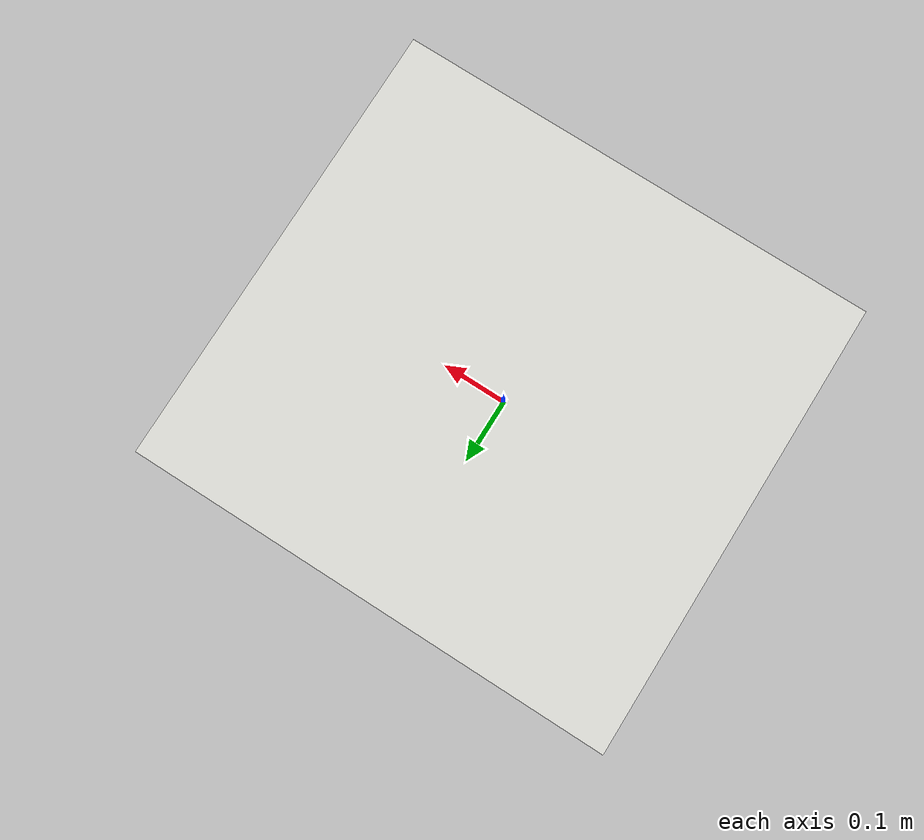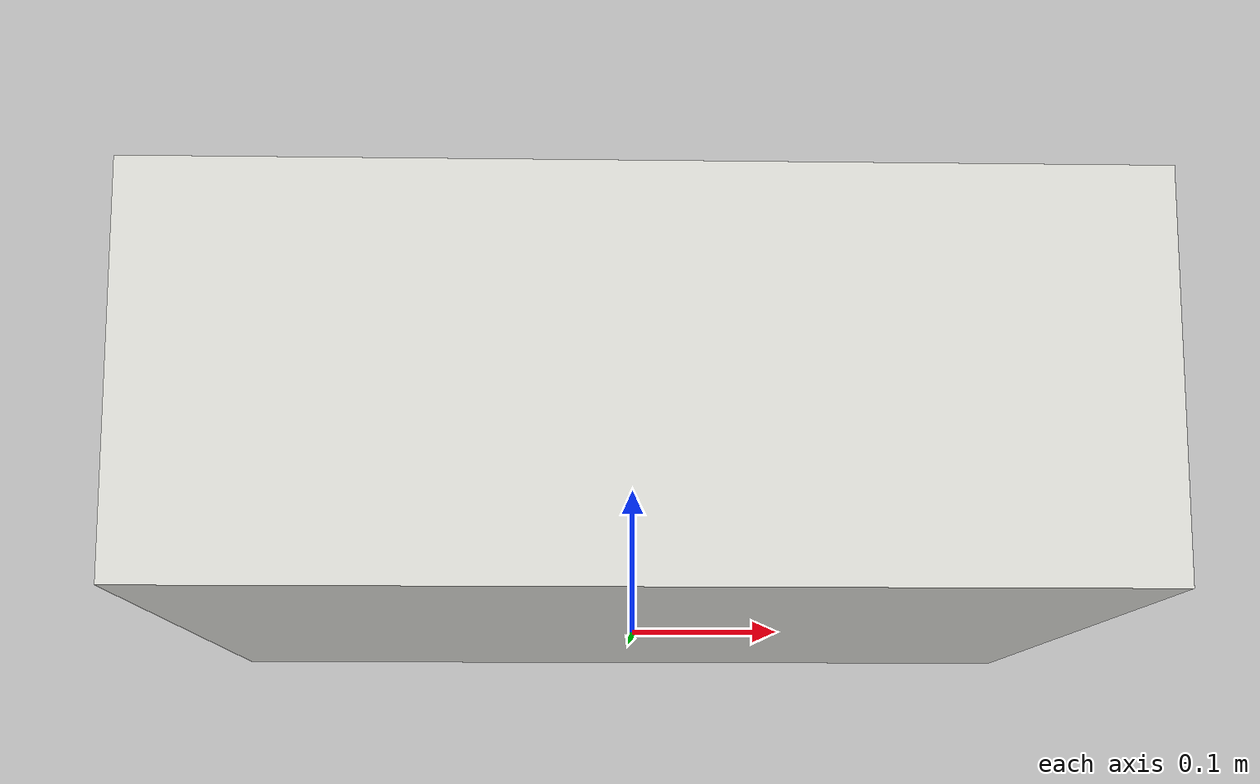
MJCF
<?xml version="1.0"?>
<mujoco model="plinth">
  <compiler angle="radian" autolimits="true"/>
  <default>
    <default class="plinth">
      <material specular="0.2" shininess="0.2"/>
      <default class="visual">
        <geom type="box" contype="0" conaffinity="0" group="2"/>
      </default>
      <default class="collision">
        <geom type="box" group="3" solimp="0.95 0.98 0.001" solref="0.004 1"/>
      </default>
    </default>
  </default>
  <worldbody>
    <body name="plinth" childclass="plinth">
      <geom name="visual" pos="0 0 0.125" size="0.31 0.29 0.125" class="visual" rgba="0.82 0.82 0.80 1"/>
      <geom name="collider" pos="0 0 0.125" size="0.31 0.29 0.125" class="collision"/>
    </body>
  </worldbody>
</mujoco>
